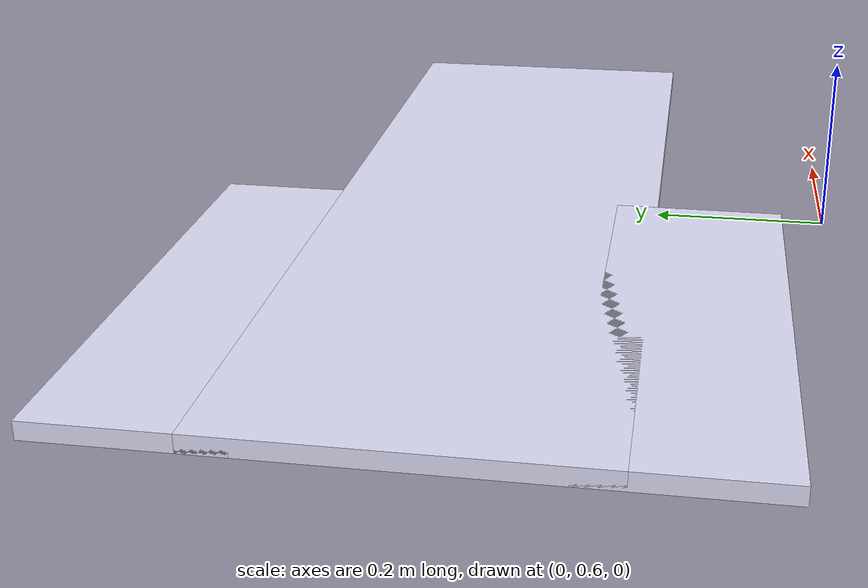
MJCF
<mujoco model="asymetric_tray" >
  <worldbody>
    <body name="asymetric_tray" pos="0 1 0">
      <freejoint/>
      <geom name="piece_1" type="box" pos="0 0 0" size=".6 0.2 0.01" rgba="0.9 0.9 1 1"/>
      <geom name="piece_2" type="box" pos="-0.3 0.25 0" size="0.3 0.1 0.01" rgba="0.9 0.9 1 1"/>
      <geom name="piece_3" type="box" pos="-0.3 -0.25 0" size="0.3 0.1 0.01" rgba="0.9 0.9 1 1"/>
    </body>
  </worldbody>
</mujoco>
